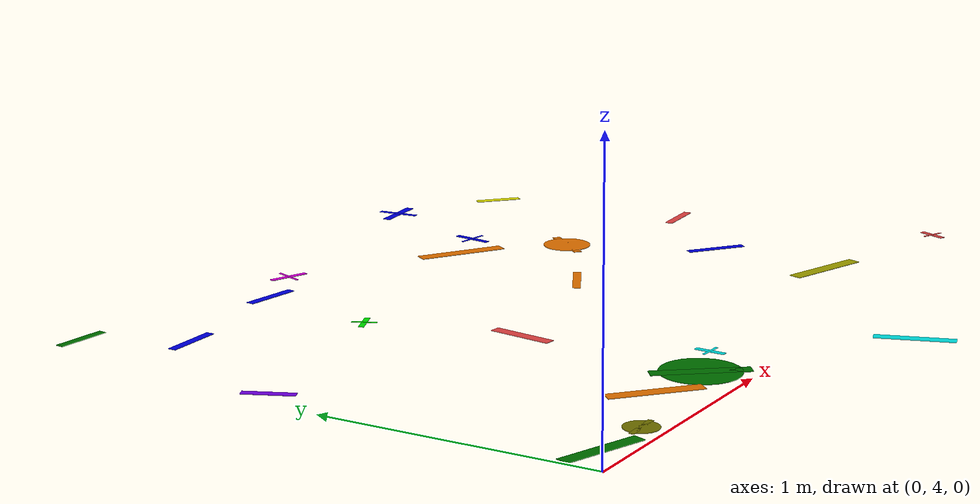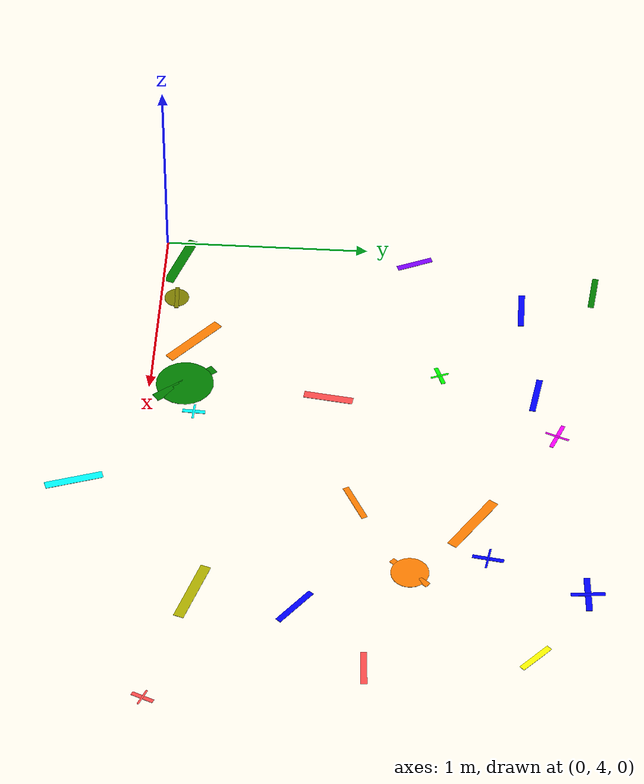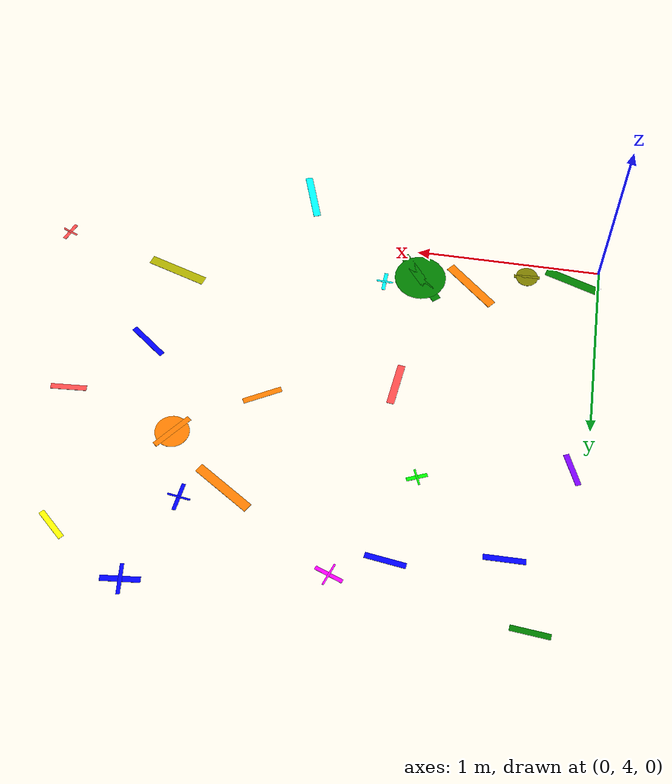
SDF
<sdf version="1.6">
 <world name="default">
  <model name="letter_G_1163">
   <static>true</static>
   <pose>0.39 4.08 0.005 0 0 3.191</pose>
   <link name="link">
    <visual name="visual">
     <geometry><box><size>0.14 0.02 0.002</size></box></geometry>
     <material>
      <ambient>0.5 0.5 0.0 1</ambient>
      <diffuse>0.5 0.5 0.0 1</diffuse>
      <specular>0.1 0.1 0.1 1</specular>
     </material>
    </visual>
    <visual name="visual2">
     <geometry><cylinder><radius>0.06</radius><length>0.002</length></cylinder></geometry>
     <material><ambient>0.5 0.5 0.0 1</ambient><diffuse>0.5 0.5 0.0 1</diffuse></material>
    </visual>
   </link>
  </model>
  <model name="letter_D_1164">
   <static>true</static>
   <pose>0.14 4.08 0.011 0 0 5.953</pose>
   <link name="link">
    <visual name="visual">
     <geometry><box><size>0.31 0.05 0.002</size></box></geometry>
     <material>
      <ambient>0.0 0.5 0.0 1</ambient>
      <diffuse>0.0 0.5 0.0 1</diffuse>
      <specular>0.1 0.1 0.1 1</specular>
     </material>
    </visual>
   </link>
  </model>
  <model name="letter_Z_1165">
   <static>true</static>
   <pose>0.08 5.24 0.005 0 0 1.978</pose>
   <link name="link">
    <visual name="visual">
     <geometry><box><size>0.18 0.03 0.002</size></box></geometry>
     <material>
      <ambient>0.5 0.0 1.0 1</ambient>
      <diffuse>0.5 0.0 1.0 1</diffuse>
      <specular>0.1 0.1 0.1 1</specular>
     </material>
    </visual>
   </link>
  </model>
  <model name="letter_V_1167">
   <static>true</static>
   <pose>0.38 5.78 0.012 0 0 0.008</pose>
   <link name="link">
    <visual name="visual">
     <geometry><box><size>0.21 0.03 0.002</size></box></geometry>
     <material>
      <ambient>0.0 0.0 1.0 1</ambient>
      <diffuse>0.0 0.0 1.0 1</diffuse>
      <specular>0.1 0.1 0.1 1</specular>
     </material>
    </visual>
   </link>
  </model>
  <model name="letter_N_1168">
   <static>true</static>
   <pose>0.23 6.13 0.006 0 0 6.186</pose>
   <link name="link">
    <visual name="visual">
     <geometry><box><size>0.20 0.03 0.002</size></box></geometry>
     <material>
      <ambient>0.0 0.5 0.0 1</ambient>
      <diffuse>0.0 0.5 0.0 1</diffuse>
      <specular>0.1 0.1 0.1 1</specular>
     </material>
    </visual>
   </link>
  </model>
  <model name="letter_L_1219">
   <static>true</static>
   <pose>1.16 4.23 0.011 0 0 1.526</pose>
   <link name="link">
    <visual name="visual">
     <geometry><box><size>0.11 0.02 0.002</size></box></geometry>
     <material>
      <ambient>0.0 1.0 1.0 1</ambient>
      <diffuse>0.0 1.0 1.0 1</diffuse>
      <specular>0.1 0.1 0.1 1</specular>
     </material>
    </visual>
    <visual name="visual2">
     <pose>0 0 0.001 0 0 1.57</pose>
     <geometry><box><size>0.09 0.01 0.001</size></box></geometry>
     <material><ambient>0.0 1.0 1.0 1</ambient><diffuse>0.0 1.0 1.0 1</diffuse></material>
    </visual>
   </link>
  </model>
  <model name="letter_Q_1220">
   <static>true</static>
   <pose>0.97 4.17 0.004 0 0 2.232</pose>
   <link name="link">
    <visual name="visual">
     <geometry><box><size>0.34 0.05 0.002</size></box></geometry>
     <material>
      <ambient>0.0 0.5 0.0 1</ambient>
      <diffuse>0.0 0.5 0.0 1</diffuse>
      <specular>0.1 0.1 0.1 1</specular>
     </material>
    </visual>
    <visual name="visual2">
     <geometry><cylinder><radius>0.14</radius><length>0.002</length></cylinder></geometry>
     <material><ambient>0.0 0.5 0.0 1</ambient><diffuse>0.0 0.5 0.0 1</diffuse></material>
    </visual>
   </link>
  </model>
  <model name="letter_W_1221">
   <static>true</static>
   <pose>0.69 4.19 0.012 0 0 5.555</pose>
   <link name="link">
    <visual name="visual">
     <geometry><box><size>0.33 0.05 0.002</size></box></geometry>
     <material>
      <ambient>1.0 0.5 0.0 1</ambient>
      <diffuse>1.0 0.5 0.0 1</diffuse>
      <specular>0.1 0.1 0.1 1</specular>
     </material>
    </visual>
   </link>
  </model>
  <model name="letter_I_1222">
   <static>true</static>
   <pose>0.85 5.40 0.013 0 0 0.388</pose>
   <link name="link">
    <visual name="visual">
     <geometry><box><size>0.11 0.02 0.002</size></box></geometry>
     <material>
      <ambient>0.0 1.0 0.0 1</ambient>
      <diffuse>0.0 1.0 0.0 1</diffuse>
      <specular>0.1 0.1 0.1 1</specular>
     </material>
    </visual>
    <visual name="visual2">
     <pose>0 0 0.001 0 0 1.57</pose>
     <geometry><box><size>0.09 0.01 0.001</size></box></geometry>
     <material><ambient>0.0 1.0 0.0 1</ambient><diffuse>0.0 1.0 0.0 1</diffuse></material>
    </visual>
   </link>
  </model>
  <model name="letter_Y_1223">
   <static>true</static>
   <pose>1.02 4.87 0.003 0 0 4.579</pose>
   <link name="link">
    <visual name="visual">
     <geometry><box><size>0.24 0.04 0.002</size></box></geometry>
     <material>
      <ambient>1.0 0.3 0.3 1</ambient>
      <diffuse>1.0 0.3 0.3 1</diffuse>
      <specular>0.1 0.1 0.1 1</specular>
     </material>
    </visual>
   </link>
  </model>
  <model name="letter_X_1224">
   <static>true</static>
   <pose>0.95 5.87 0.011 0 0 3.001</pose>
   <link name="link">
    <visual name="visual">
     <geometry><box><size>0.21 0.03 0.002</size></box></geometry>
     <material>
      <ambient>0.0 0.0 1.0 1</ambient>
      <diffuse>0.0 0.0 1.0 1</diffuse>
      <specular>0.1 0.1 0.1 1</specular>
     </material>
    </visual>
   </link>
  </model>
  <model name="letter_L_1225">
   <static>true</static>
   <pose>1.21 5.98 0.006 0 0 5.918</pose>
   <link name="link">
    <visual name="visual">
     <geometry><box><size>0.15 0.02 0.002</size></box></geometry>
     <material>
      <ambient>1.0 0.0 1.0 1</ambient>
      <diffuse>1.0 0.0 1.0 1</diffuse>
      <specular>0.1 0.1 0.1 1</specular>
     </material>
    </visual>
    <visual name="visual2">
     <pose>0 0 0.001 0 0 1.57</pose>
     <geometry><box><size>0.12 0.01 0.001</size></box></geometry>
     <material><ambient>1.0 0.0 1.0 1</ambient><diffuse>1.0 0.0 1.0 1</diffuse></material>
    </visual>
   </link>
  </model>
  <model name="letter_X_1283">
   <static>true</static>
   <pose>2.30 4.32 0.008 0 0 5.970</pose>
   <link name="link">
    <visual name="visual">
     <geometry><box><size>0.33 0.05 0.002</size></box></geometry>
     <material>
      <ambient>0.7 0.7 0.0 1</ambient>
      <diffuse>0.7 0.7 0.0 1</diffuse>
      <specular>0.1 0.1 0.1 1</specular>
     </material>
    </visual>
   </link>
  </model>
  <model name="letter_X_1284">
   <static>true</static>
   <pose>1.64 3.70 0.009 0 0 1.893</pose>
   <link name="link">
    <visual name="visual">
     <geometry><box><size>0.28 0.04 0.002</size></box></geometry>
     <material>
      <ambient>0.0 1.0 1.0 1</ambient>
      <diffuse>0.0 1.0 1.0 1</diffuse>
      <specular>0.1 0.1 0.1 1</specular>
     </material>
    </visual>
   </link>
  </model>
  <model name="letter_N_1285">
   <static>true</static>
   <pose>1.70 5.04 0.008 0 0 3.639</pose>
   <link name="link">
    <visual name="visual">
     <geometry><box><size>0.21 0.03 0.002</size></box></geometry>
     <material>
      <ambient>1.0 0.5 0.0 1</ambient>
      <diffuse>1.0 0.5 0.0 1</diffuse>
      <specular>0.1 0.1 0.1 1</specular>
     </material>
    </visual>
   </link>
  </model>
  <model name="letter_O_1286">
   <static>true</static>
   <pose>2.12 5.32 0.007 0 0 4.030</pose>
   <link name="link">
    <visual name="visual">
     <geometry><box><size>0.23 0.03 0.002</size></box></geometry>
     <material>
      <ambient>1.0 0.5 0.0 1</ambient>
      <diffuse>1.0 0.5 0.0 1</diffuse>
      <specular>0.1 0.1 0.1 1</specular>
     </material>
    </visual>
    <visual name="visual2">
     <geometry><cylinder><radius>0.09</radius><length>0.002</length></cylinder></geometry>
     <material><ambient>1.0 0.5 0.0 1</ambient><diffuse>1.0 0.5 0.0 1</diffuse></material>
    </visual>
   </link>
  </model>
  <model name="letter_S_1287">
   <static>true</static>
   <pose>2.36 4.80 0.006 0 0 5.621</pose>
   <link name="link">
    <visual name="visual">
     <geometry><box><size>0.23 0.03 0.002</size></box></geometry>
     <material>
      <ambient>0.0 0.0 1.0 1</ambient>
      <diffuse>0.0 0.0 1.0 1</diffuse>
      <specular>0.1 0.1 0.1 1</specular>
     </material>
    </visual>
   </link>
  </model>
  <model name="letter_H_1288">
   <static>true</static>
   <pose>2.20 6.15 0.006 0 0 3.232</pose>
   <link name="link">
    <visual name="visual">
     <geometry><box><size>0.20 0.03 0.002</size></box></geometry>
     <material>
      <ambient>0.0 0.0 1.0 1</ambient>
      <diffuse>0.0 0.0 1.0 1</diffuse>
      <specular>0.1 0.1 0.1 1</specular>
     </material>
    </visual>
    <visual name="visual2">
     <pose>0 0 0.001 0 0 1.57</pose>
     <geometry><box><size>0.16 0.02 0.001</size></box></geometry>
     <material><ambient>0.0 0.0 1.0 1</ambient><diffuse>0.0 0.0 1.0 1</diffuse></material>
    </visual>
   </link>
  </model>
  <model name="letter_H_1289">
   <static>true</static>
   <pose>2.01 5.68 0.007 0 0 4.565</pose>
   <link name="link">
    <visual name="visual">
     <geometry><box><size>0.15 0.02 0.002</size></box></geometry>
     <material>
      <ambient>0.0 0.0 1.0 1</ambient>
      <diffuse>0.0 0.0 1.0 1</diffuse>
      <specular>0.1 0.1 0.1 1</specular>
     </material>
    </visual>
    <visual name="visual2">
     <pose>0 0 0.001 0 0 1.57</pose>
     <geometry><box><size>0.12 0.01 0.001</size></box></geometry>
     <material><ambient>0.0 0.0 1.0 1</ambient><diffuse>0.0 0.0 1.0 1</diffuse></material>
    </visual>
   </link>
  </model>
  <model name="letter_D_1290">
   <static>true</static>
   <pose>1.80 5.60 0.012 0 0 5.705</pose>
   <link name="link">
    <visual name="visual">
     <geometry><box><size>0.34 0.05 0.002</size></box></geometry>
     <material>
      <ambient>1.0 0.5 0.0 1</ambient>
      <diffuse>1.0 0.5 0.0 1</diffuse>
      <specular>0.1 0.1 0.1 1</specular>
     </material>
    </visual>
   </link>
  </model>
  <model name="letter_T_1356">
   <static>true</static>
   <pose>2.95 4.15 0.012 0 0 1.174</pose>
   <link name="link">
    <visual name="visual">
     <geometry><box><size>0.11 0.02 0.002</size></box></geometry>
     <material>
      <ambient>1.0 0.3 0.3 1</ambient>
      <diffuse>1.0 0.3 0.3 1</diffuse>
      <specular>0.1 0.1 0.1 1</specular>
     </material>
    </visual>
    <visual name="visual2">
     <pose>0 0 0.001 0 0 1.57</pose>
     <geometry><box><size>0.09 0.01 0.001</size></box></geometry>
     <material><ambient>1.0 0.3 0.3 1</ambient><diffuse>1.0 0.3 0.3 1</diffuse></material>
    </visual>
   </link>
  </model>
  <model name="letter_P_1360">
   <static>true</static>
   <pose>2.71 5.14 0.007 0 0 0.064</pose>
   <link name="link">
    <visual name="visual">
     <geometry><box><size>0.19 0.03 0.002</size></box></geometry>
     <material>
      <ambient>1.0 0.3 0.3 1</ambient>
      <diffuse>1.0 0.3 0.3 1</diffuse>
      <specular>0.1 0.1 0.1 1</specular>
     </material>
    </visual>
   </link>
  </model>
  <model name="letter_S_1362">
   <static>true</static>
   <pose>2.60 5.92 0.007 0 0 2.397</pose>
   <link name="link">
    <visual name="visual">
     <geometry><box><size>0.18 0.03 0.002</size></box></geometry>
     <material>
      <ambient>1.0 1.0 0.0 1</ambient>
      <diffuse>1.0 1.0 0.0 1</diffuse>
      <specular>0.1 0.1 0.1 1</specular>
     </material>
    </visual>
   </link>
  </model>
 </world>
</sdf>
